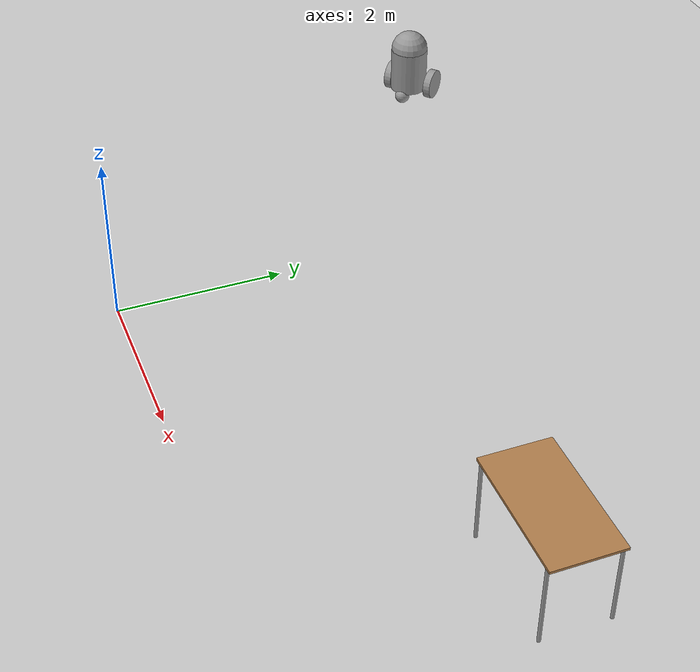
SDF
<sdf version="1.6">
 <world name="default">
  <model name="ground_plane">
   <static>1</static>
   <link name="link">
    <collision name="collision">
     <geometry><plane><normal>0 0 1</normal><size>100 100</size></plane></geometry>
     <surface><friction><ode><mu>100</mu><mu2>50</mu2></ode></friction></surface>
    </collision>
    <visual name="visual">
     <cast_shadows>0</cast_shadows>
     <geometry><plane><normal>0 0 1</normal><size>100 100</size></plane></geometry>
     <material>
      <script><uri>file://media/materials/scripts/gazebo.material</uri><name>Gazebo/Grey</name></script>
     </material>
    </visual>
   </link>
  </model>
  <model name="table">
   <static>1</static>
   <link name="link">
    <collision name="surface">
     <pose>0 0 1 0 -0 0</pose>
     <geometry><box><size>1.5 0.8 0.03</size></box></geometry>
     <surface><friction><ode><mu>0.6</mu><mu2>0.6</mu2></ode></friction></surface>
    </collision>
    <visual name="visual1">
     <pose>0 0 1 0 -0 0</pose>
     <geometry><box><size>1.5 0.8 0.03</size></box></geometry>
     <material>
      <script><uri>file://media/materials/scripts/gazebo.material</uri><name>Gazebo/Wood</name></script>
     </material>
    </visual>
    <collision name="front_left_leg">
     <pose>0.68 0.38 0.5 0 -0 0</pose>
     <geometry><cylinder><radius>0.02</radius><length>1</length></cylinder></geometry>
    </collision>
    <visual name="front_left_leg">
     <pose>0.68 0.38 0.5 0 -0 0</pose>
     <geometry><cylinder><radius>0.02</radius><length>1</length></cylinder></geometry>
     <material>
      <script><uri>file://media/materials/scripts/gazebo.material</uri><name>Gazebo/Grey</name></script>
     </material>
    </visual>
    <collision name="front_right_leg">
     <pose>0.68 -0.38 0.5 0 -0 0</pose>
     <geometry><cylinder><radius>0.02</radius><length>1</length></cylinder></geometry>
    </collision>
    <visual name="front_right_leg">
     <pose>0.68 -0.38 0.5 0 -0 0</pose>
     <geometry><cylinder><radius>0.02</radius><length>1</length></cylinder></geometry>
     <material>
      <script><uri>file://media/materials/scripts/gazebo.material</uri><name>Gazebo/Grey</name></script>
     </material>
    </visual>
    <collision name="back_right_leg">
     <pose>-0.68 -0.38 0.5 0 -0 0</pose>
     <geometry><cylinder><radius>0.02</radius><length>1</length></cylinder></geometry>
    </collision>
    <visual name="back_right_leg">
     <pose>-0.68 -0.38 0.5 0 -0 0</pose>
     <geometry><cylinder><radius>0.02</radius><length>1</length></cylinder></geometry>
     <material>
      <script><uri>file://media/materials/scripts/gazebo.material</uri><name>Gazebo/Grey</name></script>
     </material>
    </visual>
    <collision name="back_left_leg">
     <pose>-0.68 0.38 0.5 0 -0 0</pose>
     <geometry><cylinder><radius>0.02</radius><length>1</length></cylinder></geometry>
    </collision>
    <visual name="back_left_leg">
     <pose>-0.68 0.38 0.5 0 -0 0</pose>
     <geometry><cylinder><radius>0.02</radius><length>1</length></cylinder></geometry>
     <material>
      <script><uri>file://media/materials/scripts/gazebo.material</uri><name>Gazebo/Grey</name></script>
     </material>
    </visual>
   </link>
   <pose>5.3462 2.80195 0 0 -0 0</pose>
  </model>
  <model name="RobotOne">
   <link name="link_0">
    <pose>-0.028333 -0 0.133333 0 -0 0</pose>
    <inertial>
     <mass>1</mass>
     <inertia><ixx>0.145833</ixx><ixy>0</ixy><ixz>0</ixz><iyy>0.145833</iyy><iyz>0</iyz><izz>0.125</izz></inertia>
    </inertial>
    <visual name="visual">
     <geometry><cylinder><radius>0.25</radius><length>0.6</length></cylinder></geometry>
     <material>
      <lighting>1</lighting>
      <script><uri>file://media/materials/scripts/gazebo.material</uri><name>Gazebo/Grey</name></script>
      <shader type="pixel"><normal_map>__default__</normal_map></shader>
      <ambient>0.3 0.3 0.3 1</ambient>
      <diffuse>0.7 0.7 0.7 1</diffuse>
      <specular>0.01 0.01 0.01 1</specular>
      <emissive>0 0 0 1</emissive>
     </material>
    </visual>
    <collision name="collision">
     <geometry><cylinder><radius>0.25</radius><length>0.6</length></cylinder></geometry>
     <surface>
      <friction>
       <ode><mu>1</mu><mu2>1</mu2><fdir1>0 0 0</fdir1><slip1>0</slip1><slip2>0</slip2></ode>
       <torsional>
        <coefficient>1</coefficient>
        <patch_radius>0</patch_radius>
        <surface_radius>0</surface_radius>
        <use_patch_radius>1</use_patch_radius>
        <ode><slip>0</slip></ode>
       </torsional>
      </friction>
      <bounce><restitution_coefficient>0</restitution_coefficient><threshold>1e+06</threshold></bounce>
      <contact>
       <collide_without_contact>0</collide_without_contact>
       <collide_without_contact_bitmask>1</collide_without_contact_bitmask>
       <collide_bitmask>1</collide_bitmask>
       <ode>
        <soft_cfm>0</soft_cfm>
        <soft_erp>0.2</soft_erp>
        <kp>1e+13</kp>
        <kd>1</kd>
        <max_vel>0.01</max_vel>
        <min_depth>0</min_depth>
       </ode>
       <bullet>
        <split_impulse>1</split_impulse>
        <split_impulse_penetration_threshold>-0.01</split_impulse_penetration_threshold>
        <soft_cfm>0</soft_cfm>
        <soft_erp>0.2</soft_erp>
        <kp>1e+13</kp>
        <kd>1</kd>
       </bullet>
      </contact>
     </surface>
    </collision>
   </link>
   <link name="link_1">
    <pose>0.081667 -0 -0.116667 0 -0 0</pose>
    <inertial>
     <mass>1</mass>
     <inertia>
      <ixx>0.166667</ixx>
      <ixy>0</ixy>
      <ixz>0</ixz>
      <iyy>0.166667</iyy>
      <iyz>0</iyz>
      <izz>0.166667</izz>
     </inertia>
    </inertial>
    <visual name="visual">
     <geometry><box><size>0.2 0.5 0.1</size></box></geometry>
     <material>
      <lighting>1</lighting>
      <script><uri>file://media/materials/scripts/gazebo.material</uri><name>Gazebo/Grey</name></script>
      <shader type="pixel"><normal_map>__default__</normal_map></shader>
      <ambient>0.3 0.3 0.3 1</ambient>
      <diffuse>0.7 0.7 0.7 1</diffuse>
      <specular>0.01 0.01 0.01 1</specular>
      <emissive>0 0 0 1</emissive>
     </material>
    </visual>
    <collision name="collision">
     <geometry><box><size>0.2 0.5 0.1</size></box></geometry>
     <surface>
      <friction>
       <ode><mu>1</mu><mu2>1</mu2><fdir1>0 0 0</fdir1><slip1>0</slip1><slip2>0</slip2></ode>
       <torsional>
        <coefficient>1</coefficient>
        <patch_radius>0</patch_radius>
        <surface_radius>0</surface_radius>
        <use_patch_radius>1</use_patch_radius>
        <ode><slip>0</slip></ode>
       </torsional>
      </friction>
      <bounce><restitution_coefficient>0</restitution_coefficient><threshold>1e+06</threshold></bounce>
      <contact>
       <collide_without_contact>0</collide_without_contact>
       <collide_without_contact_bitmask>1</collide_without_contact_bitmask>
       <collide_bitmask>1</collide_bitmask>
       <ode>
        <soft_cfm>0</soft_cfm>
        <soft_erp>0.2</soft_erp>
        <kp>1e+13</kp>
        <kd>1</kd>
        <max_vel>0.01</max_vel>
        <min_depth>0</min_depth>
       </ode>
       <bullet>
        <split_impulse>1</split_impulse>
        <split_impulse_penetration_threshold>-0.01</split_impulse_penetration_threshold>
        <soft_cfm>0</soft_cfm>
        <soft_erp>0.2</soft_erp>
        <kp>1e+13</kp>
        <kd>1</kd>
       </bullet>
      </contact>
     </surface>
    </collision>
   </link>
   <link name="link_2">
    <pose>0.101667 -0.300019 -0.116667 1.5707 -0 0</pose>
    <inertial>
     <mass>1</mass>
     <inertia><ixx>0.145833</ixx><ixy>0</ixy><ixz>0</ixz><iyy>0.145833</iyy><iyz>0</iyz><izz>0.125</izz></inertia>
    </inertial>
    <visual name="visual">
     <geometry><cylinder><radius>0.2</radius><length>0.1</length></cylinder></geometry>
     <material>
      <lighting>1</lighting>
      <script><uri>file://media/materials/scripts/gazebo.material</uri><name>Gazebo/Grey</name></script>
      <shader type="pixel"><normal_map>__default__</normal_map></shader>
      <ambient>0.3 0.3 0.3 1</ambient>
      <diffuse>0.7 0.7 0.7 1</diffuse>
      <specular>0.01 0.01 0.01 1</specular>
      <emissive>0 0 0 1</emissive>
     </material>
    </visual>
    <collision name="collision">
     <geometry><cylinder><radius>0.2</radius><length>0.1</length></cylinder></geometry>
     <surface>
      <friction>
       <ode><mu>1</mu><mu2>1</mu2><fdir1>0 0 0</fdir1><slip1>0</slip1><slip2>0</slip2></ode>
       <torsional>
        <coefficient>1</coefficient>
        <patch_radius>0</patch_radius>
        <surface_radius>0</surface_radius>
        <use_patch_radius>1</use_patch_radius>
        <ode><slip>0</slip></ode>
       </torsional>
      </friction>
      <bounce><restitution_coefficient>0</restitution_coefficient><threshold>1e+06</threshold></bounce>
      <contact>
       <collide_without_contact>0</collide_without_contact>
       <collide_without_contact_bitmask>1</collide_without_contact_bitmask>
       <collide_bitmask>1</collide_bitmask>
       <ode>
        <soft_cfm>0</soft_cfm>
        <soft_erp>0.2</soft_erp>
        <kp>1e+13</kp>
        <kd>1</kd>
        <max_vel>0.01</max_vel>
        <min_depth>0</min_depth>
       </ode>
       <bullet>
        <split_impulse>1</split_impulse>
        <split_impulse_penetration_threshold>-0.01</split_impulse_penetration_threshold>
        <soft_cfm>0</soft_cfm>
        <soft_erp>0.2</soft_erp>
        <kp>1e+13</kp>
        <kd>1</kd>
       </bullet>
      </contact>
     </surface>
    </collision>
   </link>
   <link name="link_2_clone">
    <pose>0.101667 0.300019 -0.116667 1.5707 -0 0</pose>
    <inertial>
     <mass>1</mass>
     <inertia><ixx>0.145833</ixx><ixy>0</ixy><ixz>0</ixz><iyy>0.145833</iyy><iyz>0</iyz><izz>0.125</izz></inertia>
    </inertial>
    <visual name="visual">
     <geometry><cylinder><radius>0.2</radius><length>0.1</length></cylinder></geometry>
     <material>
      <lighting>1</lighting>
      <script><uri>file://media/materials/scripts/gazebo.material</uri><name>Gazebo/Grey</name></script>
      <shader type="pixel"><normal_map>__default__</normal_map></shader>
      <ambient>0.3 0.3 0.3 1</ambient>
      <diffuse>0.7 0.7 0.7 1</diffuse>
      <specular>0.01 0.01 0.01 1</specular>
      <emissive>0 0 0 1</emissive>
     </material>
    </visual>
    <collision name="collision">
     <geometry><cylinder><radius>0.2</radius><length>0.1</length></cylinder></geometry>
     <surface>
      <friction>
       <ode><mu>1</mu><mu2>1</mu2><fdir1>0 0 0</fdir1><slip1>0</slip1><slip2>0</slip2></ode>
       <torsional>
        <coefficient>1</coefficient>
        <patch_radius>0</patch_radius>
        <surface_radius>0</surface_radius>
        <use_patch_radius>1</use_patch_radius>
        <ode><slip>0</slip></ode>
       </torsional>
      </friction>
      <bounce><restitution_coefficient>0</restitution_coefficient><threshold>1e+06</threshold></bounce>
      <contact>
       <collide_without_contact>0</collide_without_contact>
       <collide_without_contact_bitmask>1</collide_without_contact_bitmask>
       <collide_bitmask>1</collide_bitmask>
       <ode>
        <soft_cfm>0</soft_cfm>
        <soft_erp>0.2</soft_erp>
        <kp>1e+13</kp>
        <kd>1</kd>
        <max_vel>0.01</max_vel>
        <min_depth>0</min_depth>
       </ode>
       <bullet>
        <split_impulse>1</split_impulse>
        <split_impulse_penetration_threshold>-0.01</split_impulse_penetration_threshold>
        <soft_cfm>0</soft_cfm>
        <soft_erp>0.2</soft_erp>
        <kp>1e+13</kp>
        <kd>1</kd>
       </bullet>
      </contact>
     </surface>
    </collision>
   </link>
   <link name="link_3">
    <pose>-0.228333 -0 -0.216667 0 -0 0</pose>
    <inertial>
     <mass>1</mass>
     <inertia><ixx>0.1</ixx><ixy>0</ixy><ixz>0</ixz><iyy>0.1</iyy><iyz>0</iyz><izz>0.1</izz></inertia>
    </inertial>
    <visual name="visual">
     <geometry><sphere><radius>0.1</radius></sphere></geometry>
     <material>
      <lighting>1</lighting>
      <script><uri>file://media/materials/scripts/gazebo.material</uri><name>Gazebo/Grey</name></script>
      <shader type="pixel"><normal_map>__default__</normal_map></shader>
      <ambient>0.3 0.3 0.3 1</ambient>
      <diffuse>0.7 0.7 0.7 1</diffuse>
      <specular>0.01 0.01 0.01 1</specular>
      <emissive>0 0 0 1</emissive>
     </material>
    </visual>
    <collision name="collision">
     <geometry><sphere><radius>0.1</radius></sphere></geometry>
     <surface>
      <friction>
       <ode><mu>1</mu><mu2>1</mu2><fdir1>0 0 0</fdir1><slip1>0</slip1><slip2>0</slip2></ode>
       <torsional>
        <coefficient>1</coefficient>
        <patch_radius>0</patch_radius>
        <surface_radius>0</surface_radius>
        <use_patch_radius>1</use_patch_radius>
        <ode><slip>0</slip></ode>
       </torsional>
      </friction>
      <bounce><restitution_coefficient>0</restitution_coefficient><threshold>1e+06</threshold></bounce>
      <contact>
       <collide_without_contact>0</collide_without_contact>
       <collide_without_contact_bitmask>1</collide_without_contact_bitmask>
       <collide_bitmask>1</collide_bitmask>
       <ode>
        <soft_cfm>0</soft_cfm>
        <soft_erp>0.2</soft_erp>
        <kp>1e+13</kp>
        <kd>1</kd>
        <max_vel>0.01</max_vel>
        <min_depth>0</min_depth>
       </ode>
       <bullet>
        <split_impulse>1</split_impulse>
        <split_impulse_penetration_threshold>-0.01</split_impulse_penetration_threshold>
        <soft_cfm>0</soft_cfm>
        <soft_erp>0.2</soft_erp>
        <kp>1e+13</kp>
        <kd>1</kd>
       </bullet>
      </contact>
     </surface>
    </collision>
   </link>
   <link name="link_4">
    <pose>-0.028333 -0 0.433333 0 -0 0</pose>
    <inertial>
     <mass>1</mass>
     <inertia><ixx>0.1</ixx><ixy>0</ixy><ixz>0</ixz><iyy>0.1</iyy><iyz>0</iyz><izz>0.1</izz></inertia>
    </inertial>
    <visual name="visual">
     <geometry><sphere><radius>0.25</radius></sphere></geometry>
     <material>
      <lighting>1</lighting>
      <script><uri>file://media/materials/scripts/gazebo.material</uri><name>Gazebo/Grey</name></script>
      <shader type="pixel"><normal_map>__default__</normal_map></shader>
      <ambient>0.3 0.3 0.3 1</ambient>
      <diffuse>0.7 0.7 0.7 1</diffuse>
      <specular>0.01 0.01 0.01 1</specular>
      <emissive>0 0 0 1</emissive>
     </material>
    </visual>
    <collision name="collision">
     <geometry><sphere><radius>0.25</radius></sphere></geometry>
     <surface>
      <friction>
       <ode><mu>1</mu><mu2>1</mu2><fdir1>0 0 0</fdir1><slip1>0</slip1><slip2>0</slip2></ode>
       <torsional>
        <coefficient>1</coefficient>
        <patch_radius>0</patch_radius>
        <surface_radius>0</surface_radius>
        <use_patch_radius>1</use_patch_radius>
        <ode><slip>0</slip></ode>
       </torsional>
      </friction>
      <bounce><restitution_coefficient>0</restitution_coefficient><threshold>1e+06</threshold></bounce>
      <contact>
       <collide_without_contact>0</collide_without_contact>
       <collide_without_contact_bitmask>1</collide_without_contact_bitmask>
       <collide_bitmask>1</collide_bitmask>
       <ode>
        <soft_cfm>0</soft_cfm>
        <soft_erp>0.2</soft_erp>
        <kp>1e+13</kp>
        <kd>1</kd>
        <max_vel>0.01</max_vel>
        <min_depth>0</min_depth>
       </ode>
       <bullet>
        <split_impulse>1</split_impulse>
        <split_impulse_penetration_threshold>-0.01</split_impulse_penetration_threshold>
        <soft_cfm>0</soft_cfm>
        <soft_erp>0.2</soft_erp>
        <kp>1e+13</kp>
        <kd>1</kd>
       </bullet>
      </contact>
     </surface>
    </collision>
   </link>
   <joint name="link_0_JOINT_7" type="revolute">
    <parent>link_0</parent>
    <child>link_3</child>
    <axis>
     <xyz>1 0 0</xyz>
     <use_parent_model_frame>0</use_parent_model_frame>
     <limit>
      <lower>-1.79769e+308</lower>
      <upper>1.79769e+308</upper>
      <effort>-1</effort>
      <velocity>-1</velocity>
     </limit>
     <dynamics>
      <spring_reference>0</spring_reference>
      <spring_stiffness>0</spring_stiffness>
      <damping>0</damping>
     </dynamics>
    </axis>
    <physics>
     <ode><limit><cfm>0</cfm><erp>0.2</erp></limit><suspension><cfm>0</cfm><erp>0.2</erp></suspension></ode>
    </physics>
   </joint>
   <joint name="link_0_JOINT_8" type="fixed">
    <parent>link_0</parent>
    <child>link_4</child>
    <physics>
     <ode><limit><cfm>0</cfm><erp>0.2</erp></limit><suspension><cfm>0</cfm><erp>0.2</erp></suspension></ode>
    </physics>
   </joint>
   <joint name="link_1_JOINT_0" type="revolute">
    <parent>link_1</parent>
    <child>link_2</child>
    <pose>0 0 0 0 0 -0.05</pose>
    <axis>
     <xyz>0 0 1</xyz>
     <use_parent_model_frame>0</use_parent_model_frame>
     <limit>
      <lower>-1.79769e+308</lower>
      <upper>1.79769e+308</upper>
      <effort>-1</effort>
      <velocity>-1</velocity>
     </limit>
     <dynamics>
      <spring_reference>0</spring_reference>
      <spring_stiffness>0</spring_stiffness>
      <damping>0</damping>
     </dynamics>
    </axis>
    <physics>
     <ode><limit><cfm>0</cfm><erp>0.2</erp></limit><suspension><cfm>0</cfm><erp>0.2</erp></suspension></ode>
    </physics>
   </joint>
   <joint name="link_1_JOINT_1" type="revolute">
    <parent>link_1</parent>
    <child>link_2_clone</child>
    <axis>
     <xyz>0 0 1</xyz>
     <use_parent_model_frame>0</use_parent_model_frame>
     <limit>
      <lower>-1.79769e+308</lower>
      <upper>1.79769e+308</upper>
      <effort>-1</effort>
      <velocity>-1</velocity>
     </limit>
     <dynamics>
      <spring_reference>0</spring_reference>
      <spring_stiffness>0</spring_stiffness>
      <damping>0</damping>
     </dynamics>
    </axis>
    <physics>
     <ode><limit><cfm>0</cfm><erp>0.2</erp></limit><suspension><cfm>0</cfm><erp>0.2</erp></suspension></ode>
    </physics>
   </joint>
   <joint name="link_1_JOINT_5" type="fixed">
    <parent>link_1</parent>
    <child>link_0</child>
    <physics>
     <ode><limit><cfm>0</cfm><erp>0.2</erp></limit><suspension><cfm>0</cfm><erp>0.2</erp></suspension></ode>
    </physics>
   </joint>
   <static>0</static>
   <pose>-3.31058 5.08304 0.31667 3e-06 -1.3e-05 2.31088</pose>
  </model>
 </world>
</sdf>
